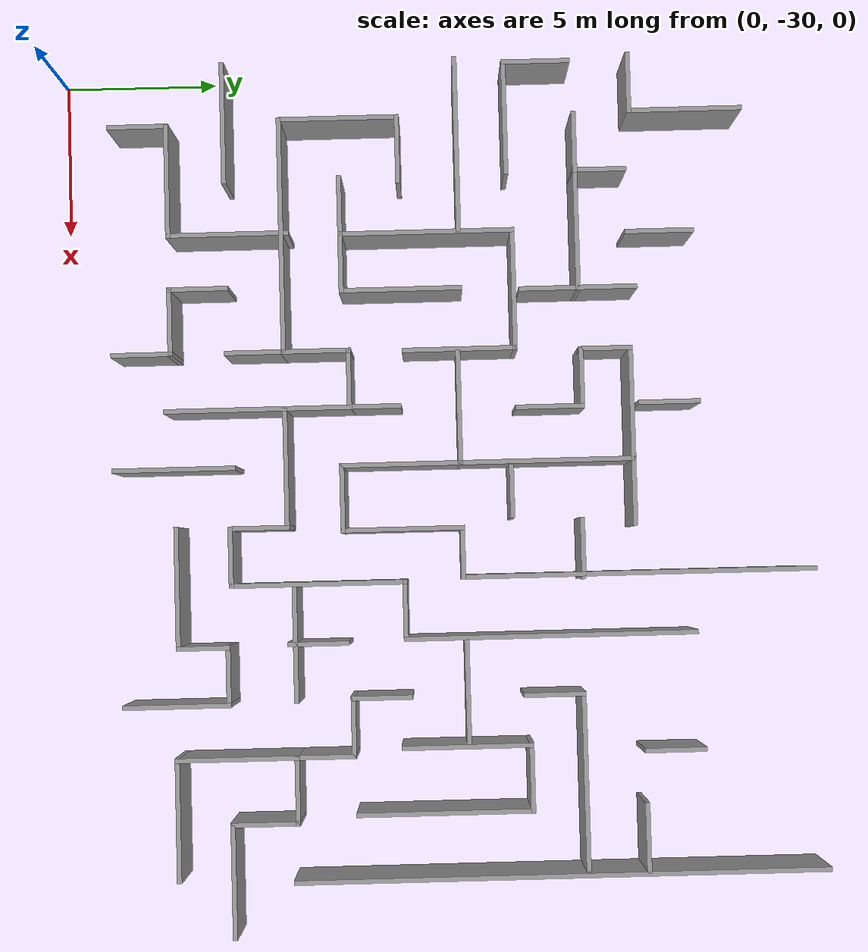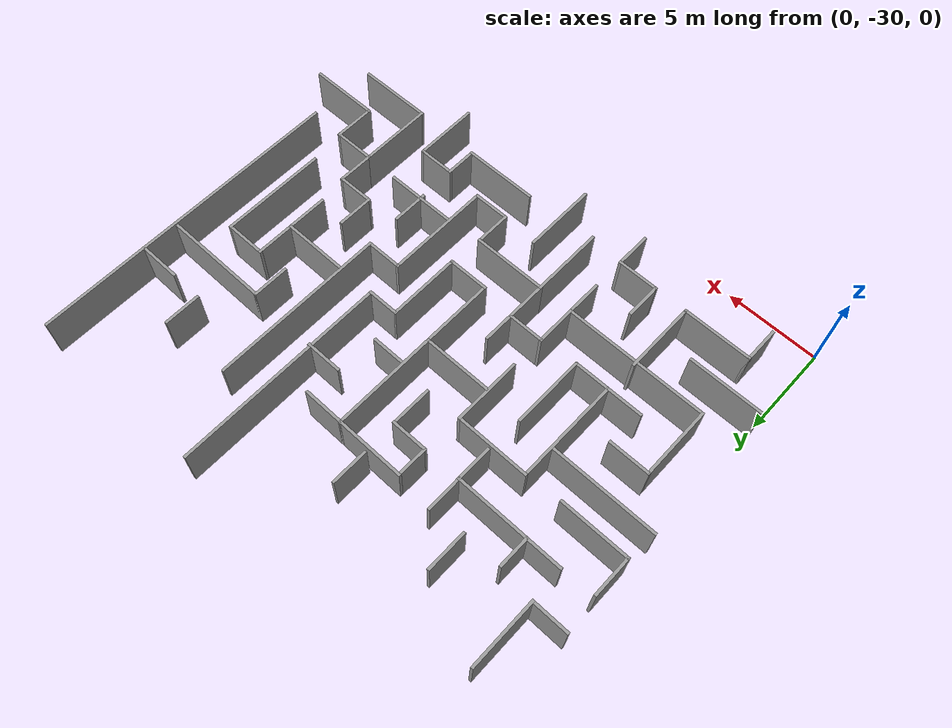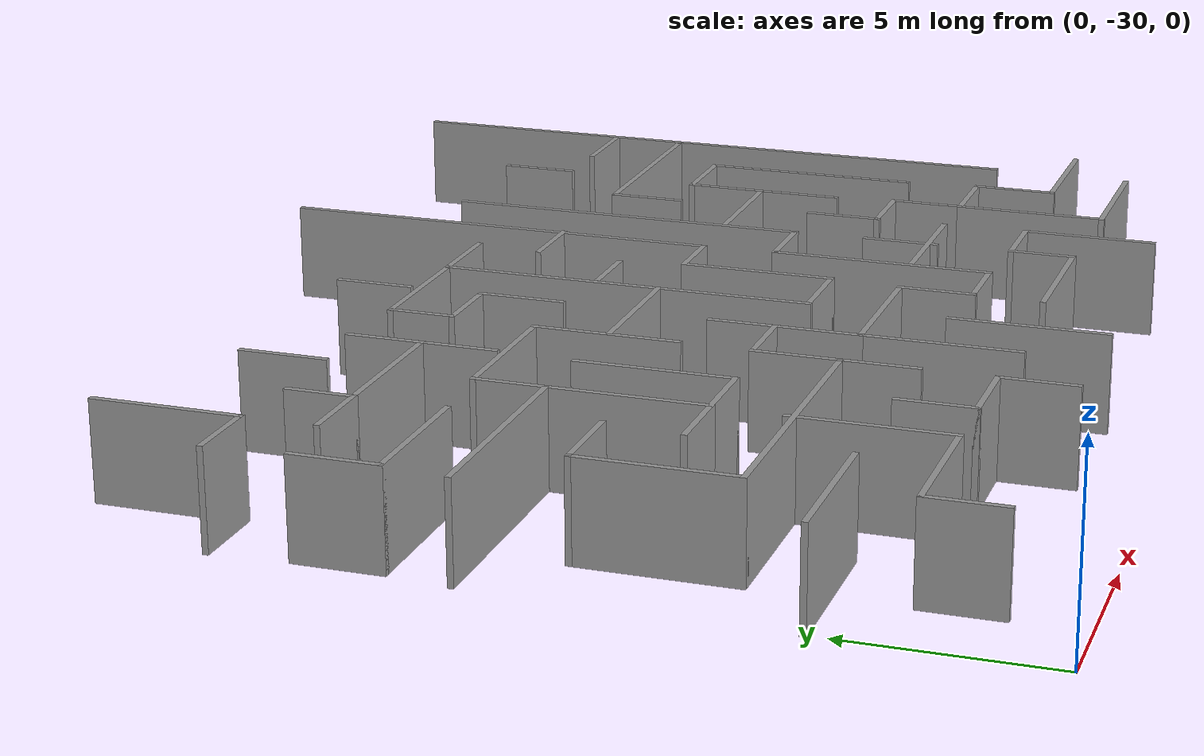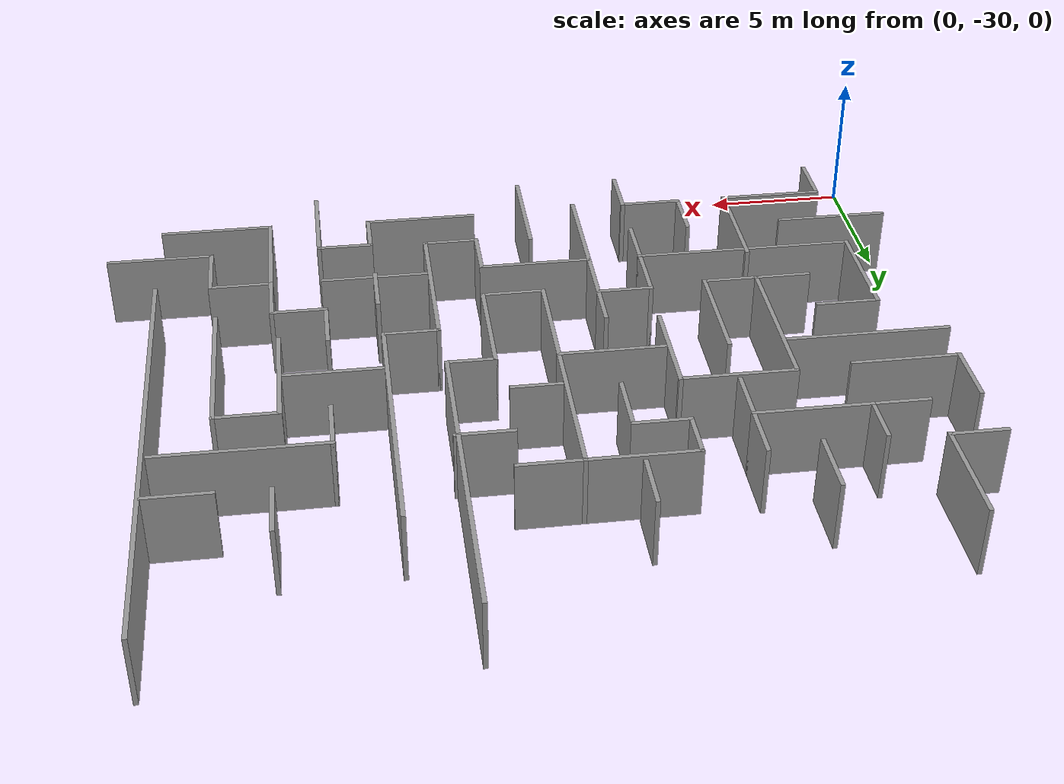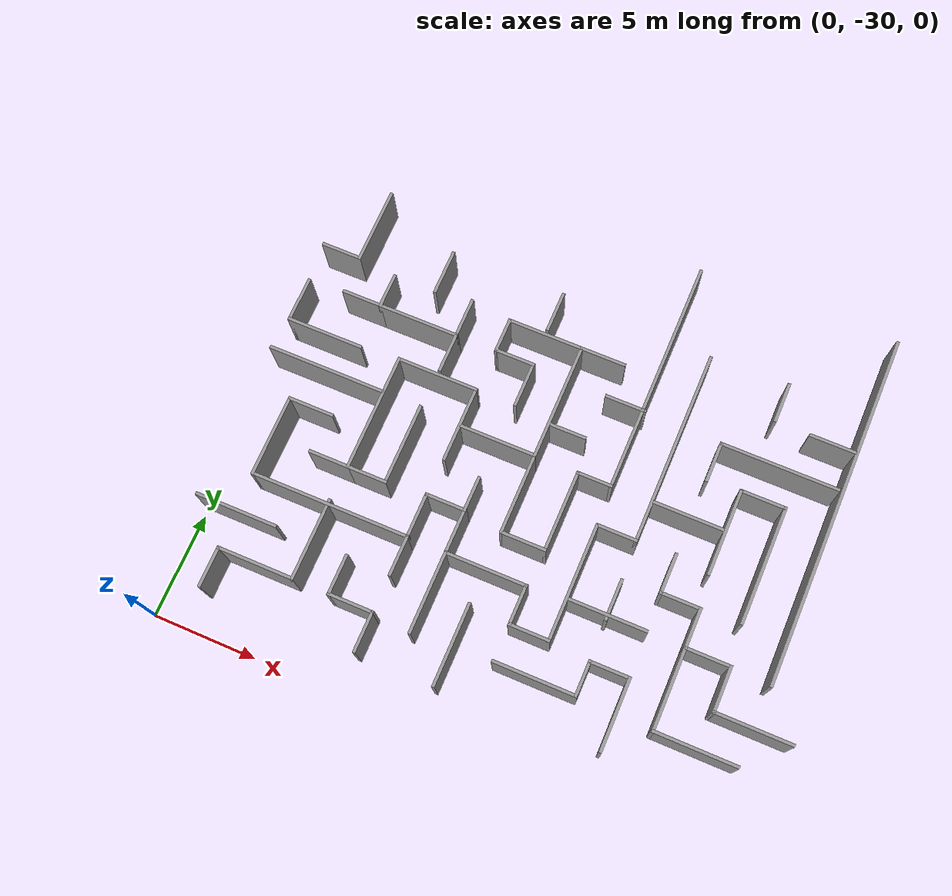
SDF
<sdf version="1.7">
 <model name="maze4">
  <pose>-0.019787 0.082438 0 0 -0 0</pose>
  <link name="Wall_297">
   <collision name="Wall_297_Collision">
    <geometry><box><size>2 0.15 2.5</size></box></geometry>
    <pose>0 0 1.25 0 -0 0</pose>
   </collision>
   <visual name="Wall_297_Visual">
    <pose>0 0 1.25 0 -0 0</pose>
    <geometry><box><size>2 0.15 2.5</size></box></geometry>
    <material>
     <script><uri>file://media/materials/scripts/gazebo.material</uri><name>Gazebo/Grey</name></script>
     <ambient>1 1 1 1</ambient>
    </material>
    <meta><layer>0</layer></meta>
   </visual>
   <pose>0.929166 -11.3295 0 0 -0 0</pose>
  </link>
  <link name="Wall_298">
   <collision name="Wall_298_Collision">
    <geometry><box><size>3.75 0.15 2.5</size></box></geometry>
    <pose>0 0 1.25 0 -0 0</pose>
   </collision>
   <visual name="Wall_298_Visual">
    <pose>0 0 1.25 0 -0 0</pose>
    <geometry><box><size>3.75 0.15 2.5</size></box></geometry>
    <material>
     <script><uri>file://media/materials/scripts/gazebo.material</uri><name>Gazebo/Grey</name></script>
     <ambient>1 1 1 1</ambient>
    </material>
    <meta><layer>0</layer></meta>
   </visual>
   <pose>1.85417 -9.52949 0 0 -0 1.5708</pose>
  </link>
  <link name="Wall_308">
   <collision name="Wall_308_Collision">
    <geometry><box><size>2.25 0.15 2.5</size></box></geometry>
    <pose>0 0 1.25 0 -0 0</pose>
   </collision>
   <visual name="Wall_308_Visual">
    <pose>0 0 1.25 0 -0 0</pose>
    <geometry><box><size>2.25 0.15 2.5</size></box></geometry>
    <material>
     <script><uri>file://media/materials/scripts/gazebo.material</uri><name>Gazebo/Grey</name></script>
     <ambient>1 1 1 1</ambient>
    </material>
    <meta><layer>0</layer></meta>
   </visual>
   <pose>5.82282 -10.4587 0 0 -0 -1.5708</pose>
  </link>
  <link name="Wall_310">
   <collision name="Wall_310_Collision">
    <geometry><box><size>2 0.15 2.5</size></box></geometry>
    <pose>0 0 1.25 0 -0 0</pose>
   </collision>
   <visual name="Wall_310_Visual">
    <pose>0 0 1.25 0 -0 0</pose>
    <geometry><box><size>2 0.15 2.5</size></box></geometry>
    <material>
     <script><uri>file://media/materials/scripts/gazebo.material</uri><name>Gazebo/Grey</name></script>
     <ambient>1 1 1 1</ambient>
    </material>
    <meta><layer>0</layer></meta>
   </visual>
   <pose>2.83555 -13.1485 0 0 -0 0</pose>
  </link>
  <link name="Wall_311">
   <collision name="Wall_311_Collision">
    <geometry><box><size>1.75 0.15 2.5</size></box></geometry>
    <pose>0 0 1.25 0 -0 0</pose>
   </collision>
   <visual name="Wall_311_Visual">
    <pose>0 0 1.25 0 -0 0</pose>
    <geometry><box><size>1.75 0.15 2.5</size></box></geometry>
    <material>
     <script><uri>file://media/materials/scripts/gazebo.material</uri><name>Gazebo/Grey</name></script>
     <ambient>1 1 1 1</ambient>
    </material>
    <meta><layer>0</layer></meta>
   </visual>
   <pose>3.76055 -12.3485 0 0 -0 1.5708</pose>
  </link>
  <link name="Wall_313">
   <collision name="Wall_313_Collision">
    <geometry><box><size>4 0.15 2.5</size></box></geometry>
    <pose>0 0 1.25 0 -0 0</pose>
   </collision>
   <visual name="Wall_313_Visual">
    <pose>0 0 1.25 0 -0 0</pose>
    <geometry><box><size>4 0.15 2.5</size></box></geometry>
    <material>
     <script><uri>file://media/materials/scripts/gazebo.material</uri><name>Gazebo/Grey</name></script>
     <ambient>1 1 1 1</ambient>
    </material>
    <meta><layer>0</layer></meta>
   </visual>
   <pose>5.68555 -13.1485 0 0 -0 0</pose>
  </link>
  <link name="Wall_314">
   <collision name="Wall_314_Collision">
    <geometry><box><size>2 0.15 2.5</size></box></geometry>
    <pose>0 0 1.25 0 -0 0</pose>
   </collision>
   <visual name="Wall_314_Visual">
    <pose>0 0 1.25 0 -0 0</pose>
    <geometry><box><size>2 0.15 2.5</size></box></geometry>
    <material>
     <script><uri>file://media/materials/scripts/gazebo.material</uri><name>Gazebo/Grey</name></script>
     <ambient>1 1 1 1</ambient>
    </material>
    <meta><layer>0</layer></meta>
   </visual>
   <pose>7.61055 -12.2235 0 0 -0 1.5708</pose>
  </link>
  <link name="Wall_316">
   <collision name="Wall_316_Collision">
    <geometry><box><size>3.75 0.15 2.5</size></box></geometry>
    <pose>0 0 1.25 0 -0 0</pose>
   </collision>
   <visual name="Wall_316_Visual">
    <pose>0 0 1.25 0 -0 0</pose>
    <geometry><box><size>3.75 0.15 2.5</size></box></geometry>
    <material>
     <script><uri>file://media/materials/scripts/gazebo.material</uri><name>Gazebo/Grey</name></script>
     <ambient>1 1 1 1</ambient>
    </material>
    <meta><layer>0</layer></meta>
   </visual>
   <pose>9.51693 -17.0445 0 0 -0 1.5708</pose>
  </link>
  <link name="Wall_317">
   <collision name="Wall_317_Collision">
    <geometry><box><size>4 0.15 2.5</size></box></geometry>
    <pose>0 0 1.25 0 -0 0</pose>
   </collision>
   <visual name="Wall_317_Visual">
    <pose>0 0 1.25 0 -0 0</pose>
    <geometry><box><size>4 0.15 2.5</size></box></geometry>
    <material>
     <script><uri>file://media/materials/scripts/gazebo.material</uri><name>Gazebo/Grey</name></script>
     <ambient>1 1 1 1</ambient>
    </material>
    <meta><layer>0</layer></meta>
   </visual>
   <pose>7.59193 -15.2445 0 0 -0 3.14159</pose>
  </link>
  <link name="Wall_318">
   <collision name="Wall_318_Collision">
    <geometry><box><size>5.75 0.15 2.5</size></box></geometry>
    <pose>0 0 1.25 0 -0 0</pose>
   </collision>
   <visual name="Wall_318_Visual">
    <pose>0 0 1.25 0 -0 0</pose>
    <geometry><box><size>5.75 0.15 2.5</size></box></geometry>
    <material>
     <script><uri>file://media/materials/scripts/gazebo.material</uri><name>Gazebo/Grey</name></script>
     <ambient>1 1 1 1</ambient>
    </material>
    <meta><layer>0</layer></meta>
   </visual>
   <pose>5.66693 -18.0445 0 0 -0 -1.5708</pose>
  </link>
  <link name="Wall_319">
   <collision name="Wall_319_Collision">
    <geometry><box><size>2 0.15 2.5</size></box></geometry>
    <pose>0 0 1.25 0 -0 0</pose>
   </collision>
   <visual name="Wall_319_Visual">
    <pose>0 0 1.25 0 -0 0</pose>
    <geometry><box><size>2 0.15 2.5</size></box></geometry>
    <material>
     <script><uri>file://media/materials/scripts/gazebo.material</uri><name>Gazebo/Grey</name></script>
     <ambient>1 1 1 1</ambient>
    </material>
    <meta><layer>0</layer></meta>
   </visual>
   <pose>6.59193 -20.8445 0 0 -0 0</pose>
  </link>
  <link name="Wall_320">
   <collision name="Wall_320_Collision">
    <geometry><box><size>4 0.15 2.5</size></box></geometry>
    <pose>0 0 1.25 0 -0 0</pose>
   </collision>
   <visual name="Wall_320_Visual">
    <pose>0 0 1.25 0 -0 0</pose>
    <geometry><box><size>4 0.15 2.5</size></box></geometry>
    <material>
     <script><uri>file://media/materials/scripts/gazebo.material</uri><name>Gazebo/Grey</name></script>
     <ambient>1 1 1 1</ambient>
    </material>
    <meta><layer>0</layer></meta>
   </visual>
   <pose>7.51693 -18.9195 0 0 -0 1.5708</pose>
  </link>
  <link name="Wall_322">
   <collision name="Wall_322_Collision">
    <geometry><box><size>2 0.15 2.5</size></box></geometry>
    <pose>0 0 1.25 0 -0 0</pose>
   </collision>
   <visual name="Wall_322_Visual">
    <pose>0 0 1.25 0 -0 0</pose>
    <geometry><box><size>2 0.15 2.5</size></box></geometry>
    <material>
     <script><uri>file://media/materials/scripts/gazebo.material</uri><name>Gazebo/Grey</name></script>
     <ambient>1 1 1 1</ambient>
    </material>
    <meta><layer>0</layer></meta>
   </visual>
   <pose>4.74193 -20.8445 0 0 -0 3.14159</pose>
  </link>
  <link name="Wall_324">
   <collision name="Wall_324_Collision">
    <geometry><box><size>2.25 0.15 2.5</size></box></geometry>
    <pose>0 0 1.25 0 -0 0</pose>
   </collision>
   <visual name="Wall_324_Visual">
    <pose>0 0 1.25 0 -0 0</pose>
    <geometry><box><size>2.25 0.15 2.5</size></box></geometry>
    <material>
     <script><uri>file://media/materials/scripts/gazebo.material</uri><name>Gazebo/Grey</name></script>
     <ambient>1 1 1 1</ambient>
    </material>
    <meta><layer>0</layer></meta>
   </visual>
   <pose>2.9125 -18.9152 0 0 -0 3.14159</pose>
  </link>
  <link name="Wall_325">
   <collision name="Wall_325_Collision">
    <geometry><box><size>4 0.15 2.5</size></box></geometry>
    <pose>0 0 1.25 0 -0 0</pose>
   </collision>
   <visual name="Wall_325_Visual">
    <pose>0 0 1.25 0 -0 0</pose>
    <geometry><box><size>4 0.15 2.5</size></box></geometry>
    <material>
     <script><uri>file://media/materials/scripts/gazebo.material</uri><name>Gazebo/Grey</name></script>
     <ambient>1 1 1 1</ambient>
    </material>
    <meta><layer>0</layer></meta>
   </visual>
   <pose>1.8625 -20.8402 0 0 -0 -1.5708</pose>
  </link>
  <link name="Wall_326">
   <collision name="Wall_326_Collision">
    <geometry><box><size>7.75 0.15 2.5</size></box></geometry>
    <pose>0 0 1.25 0 -0 0</pose>
   </collision>
   <visual name="Wall_326_Visual">
    <pose>0 0 1.25 0 -0 0</pose>
    <geometry><box><size>7.75 0.15 2.5</size></box></geometry>
    <material>
     <script><uri>file://media/materials/scripts/gazebo.material</uri><name>Gazebo/Grey</name></script>
     <ambient>1 1 1 1</ambient>
    </material>
    <meta><layer>0</layer></meta>
   </visual>
   <pose>5.6625 -22.7652 0 0 -0 0</pose>
  </link>
  <link name="Wall_327">
   <collision name="Wall_327_Collision">
    <geometry><box><size>2.25 0.15 2.5</size></box></geometry>
    <pose>0 0 1.25 0 -0 0</pose>
   </collision>
   <visual name="Wall_327_Visual">
    <pose>0 0 1.25 0 -0 0</pose>
    <geometry><box><size>2.25 0.15 2.5</size></box></geometry>
    <material>
     <script><uri>file://media/materials/scripts/gazebo.material</uri><name>Gazebo/Grey</name></script>
     <ambient>1 1 1 1</ambient>
    </material>
    <meta><layer>0</layer></meta>
   </visual>
   <pose>9.4625 -21.7152 0 0 -0 1.5708</pose>
  </link>
  <link name="Wall_328">
   <collision name="Wall_328_Collision">
    <geometry><box><size>2 0.15 2.5</size></box></geometry>
    <pose>0 0 1.25 0 -0 0</pose>
   </collision>
   <visual name="Wall_328_Visual">
    <pose>0 0 1.25 0 -0 0</pose>
    <geometry><box><size>2 0.15 2.5</size></box></geometry>
    <material>
     <script><uri>file://media/materials/scripts/gazebo.material</uri><name>Gazebo/Grey</name></script>
     <ambient>1 1 1 1</ambient>
    </material>
    <meta><layer>0</layer></meta>
   </visual>
   <pose>10.3875 -20.6652 0 0 -0 0</pose>
  </link>
  <link name="Wall_329">
   <collision name="Wall_329_Collision">
    <geometry><box><size>2.25 0.15 2.5</size></box></geometry>
    <pose>0 0 1.25 0 -0 0</pose>
   </collision>
   <visual name="Wall_329_Visual">
    <pose>0 0 1.25 0 -0 0</pose>
    <geometry><box><size>2.25 0.15 2.5</size></box></geometry>
    <material>
     <script><uri>file://media/materials/scripts/gazebo.material</uri><name>Gazebo/Grey</name></script>
     <ambient>1 1 1 1</ambient>
    </material>
    <meta><layer>0</layer></meta>
   </visual>
   <pose>11.3125 -21.7152 0 0 -0 -1.5708</pose>
  </link>
  <link name="Wall_330">
   <collision name="Wall_330_Collision">
    <geometry><box><size>4 0.15 2.5</size></box></geometry>
    <pose>0 0 1.25 0 -0 0</pose>
   </collision>
   <visual name="Wall_330_Visual">
    <pose>0 0 1.25 0 -0 0</pose>
    <geometry><box><size>4 0.15 2.5</size></box></geometry>
    <material>
     <script><uri>file://media/materials/scripts/gazebo.material</uri><name>Gazebo/Grey</name></script>
     <ambient>1 1 1 1</ambient>
    </material>
    <meta><layer>0</layer></meta>
   </visual>
   <pose>13.2375 -22.7652 0 0 -0 0</pose>
  </link>
  <link name="Wall_331">
   <collision name="Wall_331_Collision">
    <geometry><box><size>2 0.15 2.5</size></box></geometry>
    <pose>0 0 1.25 0 -0 0</pose>
   </collision>
   <visual name="Wall_331_Visual">
    <pose>0 0 1.25 0 -0 0</pose>
    <geometry><box><size>2 0.15 2.5</size></box></geometry>
    <material>
     <script><uri>file://media/materials/scripts/gazebo.material</uri><name>Gazebo/Grey</name></script>
     <ambient>1 1 1 1</ambient>
    </material>
    <meta><layer>0</layer></meta>
   </visual>
   <pose>15.1625 -23.6902 0 0 -0 -1.5708</pose>
  </link>
  <link name="Wall_332">
   <collision name="Wall_332_Collision">
    <geometry><box><size>2 0.15 2.5</size></box></geometry>
    <pose>0 0 1.25 0 -0 0</pose>
   </collision>
   <visual name="Wall_332_Visual">
    <pose>0 0 1.25 0 -0 0</pose>
    <geometry><box><size>2 0.15 2.5</size></box></geometry>
    <material>
     <script><uri>file://media/materials/scripts/gazebo.material</uri><name>Gazebo/Grey</name></script>
     <ambient>1 1 1 1</ambient>
    </material>
    <meta><layer>0</layer></meta>
   </visual>
   <pose>16.0875 -24.6152 0 0 -0 0</pose>
  </link>
  <link name="Wall_333">
   <collision name="Wall_333_Collision">
    <geometry><box><size>5.75 0.15 2.5</size></box></geometry>
    <pose>0 0 1.25 0 -0 0</pose>
   </collision>
   <visual name="Wall_333_Visual">
    <pose>0 0 1.25 0 -0 0</pose>
    <geometry><box><size>5.75 0.15 2.5</size></box></geometry>
    <material>
     <script><uri>file://media/materials/scripts/gazebo.material</uri><name>Gazebo/Grey</name></script>
     <ambient>1 1 1 1</ambient>
    </material>
    <meta><layer>0</layer></meta>
   </visual>
   <pose>17.0125 -21.8152 0 0 -0 1.5708</pose>
  </link>
  <link name="Wall_334">
   <collision name="Wall_334_Collision">
    <geometry><box><size>2 0.15 2.5</size></box></geometry>
    <pose>0 0 1.25 0 -0 0</pose>
   </collision>
   <visual name="Wall_334_Visual">
    <pose>0 0 1.25 0 -0 0</pose>
    <geometry><box><size>2 0.15 2.5</size></box></geometry>
    <material>
     <script><uri>file://media/materials/scripts/gazebo.material</uri><name>Gazebo/Grey</name></script>
     <ambient>1 1 1 1</ambient>
    </material>
    <meta><layer>0</layer></meta>
   </visual>
   <pose>17.9375 -19.0152 0 0 -0 0</pose>
  </link>
  <link name="Wall_335">
   <collision name="Wall_335_Collision">
    <geometry><box><size>9.5 0.15 2.5</size></box></geometry>
    <pose>0 0 1.25 0 -0 0</pose>
   </collision>
   <visual name="Wall_335_Visual">
    <pose>0 0 1.25 0 -0 0</pose>
    <geometry><box><size>9.5 0.15 2.5</size></box></geometry>
    <material>
     <script><uri>file://media/materials/scripts/gazebo.material</uri><name>Gazebo/Grey</name></script>
     <ambient>1 1 1 1</ambient>
    </material>
    <meta><layer>0</layer></meta>
   </visual>
   <pose>18.8625 -14.3402 0 0 -0 1.5708</pose>
  </link>
  <link name="Wall_337">
   <collision name="Wall_337_Collision">
    <geometry><box><size>3.5 0.15 2.5</size></box></geometry>
    <pose>0 0 1.25 0 -0 0</pose>
   </collision>
   <visual name="Wall_337_Visual">
    <pose>0 0 1.25 0 -0 0</pose>
    <geometry><box><size>3.5 0.15 2.5</size></box></geometry>
    <material>
     <script><uri>file://media/materials/scripts/gazebo.material</uri><name>Gazebo/Grey</name></script>
     <ambient>1 1 1 1</ambient>
    </material>
    <meta><layer>0</layer></meta>
   </visual>
   <pose>20.8381 -26.4387 0 0 -0 1.5708</pose>
  </link>
  <link name="Wall_338">
   <collision name="Wall_338_Collision">
    <geometry><box><size>2 0.15 2.5</size></box></geometry>
    <pose>0 0 1.25 0 -0 0</pose>
   </collision>
   <visual name="Wall_338_Visual">
    <pose>0 0 1.25 0 -0 0</pose>
    <geometry><box><size>2 0.15 2.5</size></box></geometry>
    <material>
     <script><uri>file://media/materials/scripts/gazebo.material</uri><name>Gazebo/Grey</name></script>
     <ambient>1 1 1 1</ambient>
    </material>
    <meta><layer>0</layer></meta>
   </visual>
   <pose>19.9131 -24.7637 0 0 -0 3.14159</pose>
  </link>
  <link name="Wall_339">
   <collision name="Wall_339_Collision">
    <geometry><box><size>1.75 0.15 2.5</size></box></geometry>
    <pose>0 0 1.25 0 -0 0</pose>
   </collision>
   <visual name="Wall_339_Visual">
    <pose>0 0 1.25 0 -0 0</pose>
    <geometry><box><size>1.75 0.15 2.5</size></box></geometry>
    <material>
     <script><uri>file://media/materials/scripts/gazebo.material</uri><name>Gazebo/Grey</name></script>
     <ambient>1 1 1 1</ambient>
    </material>
    <meta><layer>0</layer></meta>
   </visual>
   <pose>18.9881 -25.5637 0 0 -0 -1.5708</pose>
  </link>
  <link name="Wall_340">
   <collision name="Wall_340_Collision">
    <geometry><box><size>4 0.15 2.5</size></box></geometry>
    <pose>0 0 1.25 0 -0 0</pose>
   </collision>
   <visual name="Wall_340_Visual">
    <pose>0 0 1.25 0 -0 0</pose>
    <geometry><box><size>4 0.15 2.5</size></box></geometry>
    <material>
     <script><uri>file://media/materials/scripts/gazebo.material</uri><name>Gazebo/Grey</name></script>
     <ambient>1 1 1 1</ambient>
    </material>
    <meta><layer>0</layer></meta>
   </visual>
   <pose>17.0631 -26.3637 0 0 -0 3.14159</pose>
  </link>
  <link name="Wall_342">
   <collision name="Wall_342_Collision">
    <geometry><box><size>4 0.15 2.5</size></box></geometry>
    <pose>0 0 1.25 0 -0 0</pose>
   </collision>
   <visual name="Wall_342_Visual">
    <pose>0 0 1.25 0 -0 0</pose>
    <geometry><box><size>4 0.15 2.5</size></box></geometry>
    <material>
     <script><uri>file://media/materials/scripts/gazebo.material</uri><name>Gazebo/Grey</name></script>
     <ambient>1 1 1 1</ambient>
    </material>
    <meta><layer>0</layer></meta>
   </visual>
   <pose>13.1963 -26.3947 0 0 -0 -1.5708</pose>
  </link>
  <link name="Wall_344">
   <collision name="Wall_344_Collision">
    <geometry><box><size>2 0.15 2.5</size></box></geometry>
    <pose>0 0 1.25 0 -0 0</pose>
   </collision>
   <visual name="Wall_344_Visual">
    <pose>0 0 1.25 0 -0 0</pose>
    <geometry><box><size>2 0.15 2.5</size></box></geometry>
    <material>
     <script><uri>file://media/materials/scripts/gazebo.material</uri><name>Gazebo/Grey</name></script>
     <ambient>1 1 1 1</ambient>
    </material>
    <meta><layer>0</layer></meta>
   </visual>
   <pose>9.44618 -27.3656 0 0 -0 1.5708</pose>
  </link>
  <link name="Wall_345">
   <collision name="Wall_345_Collision">
    <geometry><box><size>2.25 0.15 2.5</size></box></geometry>
    <pose>0 0 1.25 0 -0 0</pose>
   </collision>
   <visual name="Wall_345_Visual">
    <pose>0 0 1.25 0 -0 0</pose>
    <geometry><box><size>2.25 0.15 2.5</size></box></geometry>
    <material>
     <script><uri>file://media/materials/scripts/gazebo.material</uri><name>Gazebo/Grey</name></script>
     <ambient>1 1 1 1</ambient>
    </material>
    <meta><layer>0</layer></meta>
   </visual>
   <pose>8.39618 -26.4406 0 0 -0 3.14159</pose>
  </link>
  <link name="Wall_346">
   <collision name="Wall_346_Collision">
    <geometry><box><size>2 0.15 2.5</size></box></geometry>
    <pose>0 0 1.25 0 -0 0</pose>
   </collision>
   <visual name="Wall_346_Visual">
    <pose>0 0 1.25 0 -0 0</pose>
    <geometry><box><size>2 0.15 2.5</size></box></geometry>
    <material>
     <script><uri>file://media/materials/scripts/gazebo.material</uri><name>Gazebo/Grey</name></script>
     <ambient>1 1 1 1</ambient>
    </material>
    <meta><layer>0</layer></meta>
   </visual>
   <pose>7.34618 -25.5156 0 0 -0 1.5708</pose>
  </link>
  <link name="Wall_348">
   <collision name="Wall_348_Collision">
    <geometry><box><size>2 0.15 2.5</size></box></geometry>
    <pose>0 0 1.25 0 -0 0</pose>
   </collision>
   <visual name="Wall_348_Visual">
    <pose>0 0 1.25 0 -0 0</pose>
    <geometry><box><size>2 0.15 2.5</size></box></geometry>
    <material>
     <script><uri>file://media/materials/scripts/gazebo.material</uri><name>Gazebo/Grey</name></script>
     <ambient>1 1 1 1</ambient>
    </material>
    <meta><layer>0</layer></meta>
   </visual>
   <pose>1.98131 -27.3656 0 0 -0 1.5708</pose>
  </link>
  <link name="Wall_349">
   <collision name="Wall_349_Collision">
    <geometry><box><size>3.75 0.15 2.5</size></box></geometry>
    <pose>0 0 1.25 0 -0 0</pose>
   </collision>
   <visual name="Wall_349_Visual">
    <pose>0 0 1.25 0 -0 0</pose>
    <geometry><box><size>3.75 0.15 2.5</size></box></geometry>
    <material>
     <script><uri>file://media/materials/scripts/gazebo.material</uri><name>Gazebo/Grey</name></script>
     <ambient>1 1 1 1</ambient>
    </material>
    <meta><layer>0</layer></meta>
   </visual>
   <pose>3.78131 -26.4406 0 0 -0 0</pose>
  </link>
  <link name="Wall_350">
   <collision name="Wall_350_Collision">
    <geometry><box><size>4 0.15 2.5</size></box></geometry>
    <pose>0 0 1.25 0 -0 0</pose>
   </collision>
   <visual name="Wall_350_Visual">
    <pose>0 0 1.25 0 -0 0</pose>
    <geometry><box><size>4 0.15 2.5</size></box></geometry>
    <material>
     <script><uri>file://media/materials/scripts/gazebo.material</uri><name>Gazebo/Grey</name></script>
     <ambient>1 1 1 1</ambient>
    </material>
    <meta><layer>0</layer></meta>
   </visual>
   <pose>5.58131 -24.5156 0 0 -0 1.5708</pose>
  </link>
  <link name="Wall_354">
   <collision name="Wall_354_Collision">
    <geometry><box><size>4 0.15 2.5</size></box></geometry>
    <pose>0 0 1.25 0 -0 0</pose>
   </collision>
   <visual name="Wall_354_Visual">
    <pose>0 0 1.25 0 -0 0</pose>
    <geometry><box><size>4 0.15 2.5</size></box></geometry>
    <material>
     <script><uri>file://media/materials/scripts/gazebo.material</uri><name>Gazebo/Grey</name></script>
     <ambient>1 1 1 1</ambient>
    </material>
    <meta><layer>0</layer></meta>
   </visual>
   <pose>1.92511 -24.5844 0 0 -0 0</pose>
  </link>
  <link name="Wall_370">
   <collision name="Wall_370_Collision">
    <geometry><box><size>2.25 0.15 2.5</size></box></geometry>
    <pose>0 0 1.25 0 -0 0</pose>
   </collision>
   <visual name="Wall_370_Visual">
    <pose>0 0 1.25 0 -0 0</pose>
    <geometry><box><size>2.25 0.15 2.5</size></box></geometry>
    <material>
     <script><uri>file://media/materials/scripts/gazebo.material</uri><name>Gazebo/Grey</name></script>
     <ambient>1 1 1 1</ambient>
    </material>
    <meta><layer>0</layer></meta>
   </visual>
   <pose>0.15429 -14.3401 0 0 -0 -1.5708</pose>
  </link>
  <link name="Wall_371">
   <collision name="Wall_371_Collision">
    <geometry><box><size>3.75 0.15 2.5</size></box></geometry>
    <pose>0 0 1.25 0 -0 0</pose>
   </collision>
   <visual name="Wall_371_Visual">
    <pose>0 0 1.25 0 -0 0</pose>
    <geometry><box><size>3.75 0.15 2.5</size></box></geometry>
    <material>
     <script><uri>file://media/materials/scripts/gazebo.material</uri><name>Gazebo/Grey</name></script>
     <ambient>1 1 1 1</ambient>
    </material>
    <meta><layer>0</layer></meta>
   </visual>
   <pose>1.95429 -15.3901 0 0 -0 0</pose>
  </link>
  <link name="Wall_373">
   <collision name="Wall_373_Collision">
    <geometry><box><size>5.75 0.15 2.5</size></box></geometry>
    <pose>0 0 1.25 0 -0 0</pose>
   </collision>
   <visual name="Wall_373_Visual">
    <pose>0 0 1.25 0 -0 0</pose>
    <geometry><box><size>5.75 0.15 2.5</size></box></geometry>
    <material>
     <script><uri>file://media/materials/scripts/gazebo.material</uri><name>Gazebo/Grey</name></script>
     <ambient>1 1 1 1</ambient>
    </material>
    <meta><layer>0</layer></meta>
   </visual>
   <pose>2.80011 -16.9844 0 0 -0 0</pose>
  </link>
  <link name="Wall_375">
   <collision name="Wall_375_Collision">
    <geometry><box><size>2 0.15 2.5</size></box></geometry>
    <pose>0 0 1.25 0 -0 0</pose>
   </collision>
   <visual name="Wall_375_Visual">
    <pose>0 0 1.25 0 -0 0</pose>
    <geometry><box><size>2 0.15 2.5</size></box></geometry>
    <material>
     <script><uri>file://media/materials/scripts/gazebo.material</uri><name>Gazebo/Grey</name></script>
     <ambient>1 1 1 1</ambient>
    </material>
    <meta><layer>0</layer></meta>
   </visual>
   <pose>9.4625 -23.6902 0 0 -0 -1.5708</pose>
  </link>
  <link name="Wall_377">
   <collision name="Wall_377_Collision">
    <geometry><box><size>4 0.15 2.5</size></box></geometry>
    <pose>0 0 1.25 0 -0 0</pose>
   </collision>
   <visual name="Wall_377_Visual">
    <pose>0 0 1.25 0 -0 0</pose>
    <geometry><box><size>4 0.15 2.5</size></box></geometry>
    <material>
     <script><uri>file://media/materials/scripts/gazebo.material</uri><name>Gazebo/Grey</name></script>
     <ambient>1 1 1 1</ambient>
    </material>
    <meta><layer>0</layer></meta>
   </visual>
   <pose>11.3125 -24.6902 0 0 -0 -1.5708</pose>
  </link>
  <link name="Wall_379">
   <collision name="Wall_379_Collision">
    <geometry><box><size>3.75 0.15 2.5</size></box></geometry>
    <pose>0 0 1.25 0 -0 0</pose>
   </collision>
   <visual name="Wall_379_Visual">
    <pose>0 0 1.25 0 -0 0</pose>
    <geometry><box><size>3.75 0.15 2.5</size></box></geometry>
    <material>
     <script><uri>file://media/materials/scripts/gazebo.material</uri><name>Gazebo/Grey</name></script>
     <ambient>1 1 1 1</ambient>
    </material>
    <meta><layer>0</layer></meta>
   </visual>
   <pose>11.4103 -17.1138 0 0 -0 0</pose>
  </link>
  <link name="Wall_380">
   <collision name="Wall_380_Collision">
    <geometry><box><size>4 0.15 2.5</size></box></geometry>
    <pose>0 0 1.25 0 -0 0</pose>
   </collision>
   <visual name="Wall_380_Visual">
    <pose>0 0 1.25 0 -0 0</pose>
    <geometry><box><size>4 0.15 2.5</size></box></geometry>
    <material>
     <script><uri>file://media/materials/scripts/gazebo.material</uri><name>Gazebo/Grey</name></script>
     <ambient>1 1 1 1</ambient>
    </material>
    <meta><layer>0</layer></meta>
   </visual>
   <pose>13.2103 -19.0388 0 0 -0 -1.5708</pose>
  </link>
  <link name="Wall_381">
   <collision name="Wall_381_Collision">
    <geometry><box><size>2.25 0.15 2.5</size></box></geometry>
    <pose>0 0 1.25 0 -0 0</pose>
   </collision>
   <visual name="Wall_381_Visual">
    <pose>0 0 1.25 0 -0 0</pose>
    <geometry><box><size>2.25 0.15 2.5</size></box></geometry>
    <material>
     <script><uri>file://media/materials/scripts/gazebo.material</uri><name>Gazebo/Grey</name></script>
     <ambient>1 1 1 1</ambient>
    </material>
    <meta><layer>0</layer></meta>
   </visual>
   <pose>14.2603 -20.9638 0 0 -0 0</pose>
  </link>
  <link name="Wall_382">
   <collision name="Wall_382_Collision">
    <geometry><box><size>4 0.15 2.5</size></box></geometry>
    <pose>0 0 1.25 0 -0 0</pose>
   </collision>
   <visual name="Wall_382_Visual">
    <pose>0 0 1.25 0 -0 0</pose>
    <geometry><box><size>4 0.15 2.5</size></box></geometry>
    <material>
     <script><uri>file://media/materials/scripts/gazebo.material</uri><name>Gazebo/Grey</name></script>
     <ambient>1 1 1 1</ambient>
    </material>
    <meta><layer>0</layer></meta>
   </visual>
   <pose>15.3103 -19.0388 0 0 -0 1.5708</pose>
  </link>
  <link name="Wall_383">
   <collision name="Wall_383_Collision">
    <geometry><box><size>1.75 0.15 2.5</size></box></geometry>
    <pose>0 0 1.25 0 -0 0</pose>
   </collision>
   <visual name="Wall_383_Visual">
    <pose>0 0 1.25 0 -0 0</pose>
    <geometry><box><size>1.75 0.15 2.5</size></box></geometry>
    <material>
     <script><uri>file://media/materials/scripts/gazebo.material</uri><name>Gazebo/Grey</name></script>
     <ambient>1 1 1 1</ambient>
    </material>
    <meta><layer>0</layer></meta>
   </visual>
   <pose>16.1103 -17.1138 0 0 -0 0</pose>
  </link>
  <link name="Wall_384">
   <collision name="Wall_384_Collision">
    <geometry><box><size>11.5 0.15 2.5</size></box></geometry>
    <pose>0 0 1.25 0 -0 0</pose>
   </collision>
   <visual name="Wall_384_Visual">
    <pose>0 0 1.25 0 -0 0</pose>
    <geometry><box><size>11.5 0.15 2.5</size></box></geometry>
    <material>
     <script><uri>file://media/materials/scripts/gazebo.material</uri><name>Gazebo/Grey</name></script>
     <ambient>1 1 1 1</ambient>
    </material>
    <meta><layer>0</layer></meta>
   </visual>
   <pose>16.9103 -11.4388 0 0 -0 1.5708</pose>
  </link>
  <link name="Wall_389">
   <collision name="Wall_389_Collision">
    <geometry><box><size>2 0.15 2.5</size></box></geometry>
    <pose>0 0 1.25 0 -0 0</pose>
   </collision>
   <visual name="Wall_389_Visual">
    <pose>0 0 1.25 0 -0 0</pose>
    <geometry><box><size>2 0.15 2.5</size></box></geometry>
    <material>
     <script><uri>file://media/materials/scripts/gazebo.material</uri><name>Gazebo/Grey</name></script>
     <ambient>1 1 1 1</ambient>
    </material>
    <meta><layer>0</layer></meta>
   </visual>
   <pose>16.0724 -13.2304 0 0 -0 0</pose>
  </link>
  <link name="Wall_392">
   <collision name="Wall_392_Collision">
    <geometry><box><size>5.75 0.15 2.5</size></box></geometry>
    <pose>0 0 1.25 0 -0 0</pose>
   </collision>
   <visual name="Wall_392_Visual">
    <pose>0 0 1.25 0 -0 0</pose>
    <geometry><box><size>5.75 0.15 2.5</size></box></geometry>
    <material>
     <script><uri>file://media/materials/scripts/gazebo.material</uri><name>Gazebo/Grey</name></script>
     <ambient>1 1 1 1</ambient>
    </material>
    <meta><layer>0</layer></meta>
   </visual>
   <pose>13.2103 -14.3138 0 0 -0 1.5708</pose>
  </link>
  <link name="Wall_393">
   <collision name="Wall_393_Collision">
    <geometry><box><size>3.75 0.15 2.5</size></box></geometry>
    <pose>0 0 1.25 0 -0 0</pose>
   </collision>
   <visual name="Wall_393_Visual">
    <pose>0 0 1.25 0 -0 0</pose>
    <geometry><box><size>3.75 0.15 2.5</size></box></geometry>
    <material>
     <script><uri>file://media/materials/scripts/gazebo.material</uri><name>Gazebo/Grey</name></script>
     <ambient>1 1 1 1</ambient>
    </material>
    <meta><layer>0</layer></meta>
   </visual>
   <pose>11.4103 -11.5138 0 0 -0 3.14159</pose>
  </link>
  <link name="Wall_394">
   <collision name="Wall_394_Collision">
    <geometry><box><size>1.75 0.15 2.5</size></box></geometry>
    <pose>0 0 1.25 0 -0 0</pose>
   </collision>
   <visual name="Wall_394_Visual">
    <pose>0 0 1.25 0 -0 0</pose>
    <geometry><box><size>1.75 0.15 2.5</size></box></geometry>
    <material>
     <script><uri>file://media/materials/scripts/gazebo.material</uri><name>Gazebo/Grey</name></script>
     <ambient>1 1 1 1</ambient>
    </material>
    <meta><layer>0</layer></meta>
   </visual>
   <pose>9.61032 -12.3138 0 0 -0 -1.5708</pose>
  </link>
  <link name="Wall_395">
   <collision name="Wall_395_Collision">
    <geometry><box><size>2 0.15 2.5</size></box></geometry>
    <pose>0 0 1.25 0 -0 0</pose>
   </collision>
   <visual name="Wall_395_Visual">
    <pose>0 0 1.25 0 -0 0</pose>
    <geometry><box><size>2 0.15 2.5</size></box></geometry>
    <material>
     <script><uri>file://media/materials/scripts/gazebo.material</uri><name>Gazebo/Grey</name></script>
     <ambient>1 1 1 1</ambient>
    </material>
    <meta><layer>0</layer></meta>
   </visual>
   <pose>10.5353 -13.1138 0 0 -0 0</pose>
  </link>
  <link name="Wall_396">
   <collision name="Wall_396_Collision">
    <geometry><box><size>2.25 0.15 2.5</size></box></geometry>
    <pose>0 0 1.25 0 -0 0</pose>
   </collision>
   <visual name="Wall_396_Visual">
    <pose>0 0 1.25 0 -0 0</pose>
    <geometry><box><size>2.25 0.15 2.5</size></box></geometry>
    <material>
     <script><uri>file://media/materials/scripts/gazebo.material</uri><name>Gazebo/Grey</name></script>
     <ambient>1 1 1 1</ambient>
    </material>
    <meta><layer>0</layer></meta>
   </visual>
   <pose>11.4603 -14.1638 0 0 -0 -1.5708</pose>
  </link>
  <link name="Wall_398">
   <collision name="Wall_398_Collision">
    <geometry><box><size>2 0.15 2.5</size></box></geometry>
    <pose>0 0 1.25 0 -0 0</pose>
   </collision>
   <visual name="Wall_398_Visual">
    <pose>0 0 1.25 0 -0 0</pose>
    <geometry><box><size>2 0.15 2.5</size></box></geometry>
    <material>
     <script><uri>file://media/materials/scripts/gazebo.material</uri><name>Gazebo/Grey</name></script>
     <ambient>1 1 1 1</ambient>
    </material>
    <meta><layer>0</layer></meta>
   </visual>
   <pose>11.4043 -10.2935 0 0 -0 1.5708</pose>
  </link>
  <link name="Wall_400">
   <collision name="Wall_400_Collision">
    <geometry><box><size>1.75 0.15 2.5</size></box></geometry>
    <pose>0 0 1.25 0 -0 0</pose>
   </collision>
   <visual name="Wall_400_Visual">
    <pose>0 0 1.25 0 -0 0</pose>
    <geometry><box><size>1.75 0.15 2.5</size></box></geometry>
    <material>
     <script><uri>file://media/materials/scripts/gazebo.material</uri><name>Gazebo/Grey</name></script>
     <ambient>1 1 1 1</ambient>
    </material>
    <meta><layer>0</layer></meta>
   </visual>
   <pose>14.1694 -15.4763 0 0 -0 0</pose>
  </link>
  <link name="Wall_402">
   <collision name="Wall_402_Collision">
    <geometry><box><size>2.25 0.15 2.5</size></box></geometry>
    <pose>0 0 1.25 0 -0 0</pose>
   </collision>
   <visual name="Wall_402_Visual">
    <pose>0 0 1.25 0 -0 0</pose>
    <geometry><box><size>2.25 0.15 2.5</size></box></geometry>
    <material>
     <script><uri>file://media/materials/scripts/gazebo.material</uri><name>Gazebo/Grey</name></script>
     <ambient>1 1 1 1</ambient>
    </material>
    <meta><layer>0</layer></meta>
   </visual>
   <pose>14.2603 -11.5138 0 0 -0 0</pose>
  </link>
  <link name="Wall_404">
   <collision name="Wall_404_Collision">
    <geometry><box><size>4 0.15 2.5</size></box></geometry>
    <pose>0 0 1.25 0 -0 0</pose>
   </collision>
   <visual name="Wall_404_Visual">
    <pose>0 0 1.25 0 -0 0</pose>
    <geometry><box><size>4 0.15 2.5</size></box></geometry>
    <material>
     <script><uri>file://media/materials/scripts/gazebo.material</uri><name>Gazebo/Grey</name></script>
     <ambient>1 1 1 1</ambient>
    </material>
    <meta><layer>0</layer></meta>
   </visual>
   <pose>24.4983 -26.4715 0 0 -0 3.14159</pose>
  </link>
  <link name="Wall_405">
   <collision name="Wall_405_Collision">
    <geometry><box><size>4 0.15 2.5</size></box></geometry>
    <pose>0 0 1.25 0 -0 0</pose>
   </collision>
   <visual name="Wall_405_Visual">
    <pose>0 0 1.25 0 -0 0</pose>
    <geometry><box><size>4 0.15 2.5</size></box></geometry>
    <material>
     <script><uri>file://media/materials/scripts/gazebo.material</uri><name>Gazebo/Grey</name></script>
     <ambient>1 1 1 1</ambient>
    </material>
    <meta><layer>0</layer></meta>
   </visual>
   <pose>22.5733 -24.5465 0 0 -0 1.5708</pose>
  </link>
  <link name="Wall_406">
   <collision name="Wall_406_Collision">
    <geometry><box><size>2.25 0.15 2.5</size></box></geometry>
    <pose>0 0 1.25 0 -0 0</pose>
   </collision>
   <visual name="Wall_406_Visual">
    <pose>0 0 1.25 0 -0 0</pose>
    <geometry><box><size>2.25 0.15 2.5</size></box></geometry>
    <material>
     <script><uri>file://media/materials/scripts/gazebo.material</uri><name>Gazebo/Grey</name></script>
     <ambient>1 1 1 1</ambient>
    </material>
    <meta><layer>0</layer></meta>
   </visual>
   <pose>23.6233 -22.6215 0 0 -0 0</pose>
  </link>
  <link name="Wall_407">
   <collision name="Wall_407_Collision">
    <geometry><box><size>2.25 0.15 2.5</size></box></geometry>
    <pose>0 0 1.25 0 -0 0</pose>
   </collision>
   <visual name="Wall_407_Visual">
    <pose>0 0 1.25 0 -0 0</pose>
    <geometry><box><size>2.25 0.15 2.5</size></box></geometry>
    <material>
     <script><uri>file://media/materials/scripts/gazebo.material</uri><name>Gazebo/Grey</name></script>
     <ambient>1 1 1 1</ambient>
    </material>
    <meta><layer>0</layer></meta>
   </visual>
   <pose>24.6733 -23.6715 0 0 -0 -1.5708</pose>
  </link>
  <link name="Wall_408">
   <collision name="Wall_408_Collision">
    <geometry><box><size>3.75 0.15 2.5</size></box></geometry>
    <pose>0 0 1.25 0 -0 0</pose>
   </collision>
   <visual name="Wall_408_Visual">
    <pose>0 0 1.25 0 -0 0</pose>
    <geometry><box><size>3.75 0.15 2.5</size></box></geometry>
    <material>
     <script><uri>file://media/materials/scripts/gazebo.material</uri><name>Gazebo/Grey</name></script>
     <ambient>1 1 1 1</ambient>
    </material>
    <meta><layer>0</layer></meta>
   </visual>
   <pose>26.4733 -24.7215 0 0 -0 0</pose>
  </link>
  <link name="Wall_410">
   <collision name="Wall_410_Collision">
    <geometry><box><size>2 0.15 2.5</size></box></geometry>
    <pose>0 0 1.25 0 -0 0</pose>
   </collision>
   <visual name="Wall_410_Visual">
    <pose>0 0 1.25 0 -0 0</pose>
    <geometry><box><size>2 0.15 2.5</size></box></geometry>
    <material>
     <script><uri>file://media/materials/scripts/gazebo.material</uri><name>Gazebo/Grey</name></script>
     <ambient>1 1 1 1</ambient>
    </material>
    <meta><layer>0</layer></meta>
   </visual>
   <pose>22.5733 -21.6965 0 0 -0 1.5708</pose>
  </link>
  <link name="Wall_411">
   <collision name="Wall_411_Collision">
    <geometry><box><size>2 0.15 2.5</size></box></geometry>
    <pose>0 0 1.25 0 -0 0</pose>
   </collision>
   <visual name="Wall_411_Visual">
    <pose>0 0 1.25 0 -0 0</pose>
    <geometry><box><size>2 0.15 2.5</size></box></geometry>
    <material>
     <script><uri>file://media/materials/scripts/gazebo.material</uri><name>Gazebo/Grey</name></script>
     <ambient>1 1 1 1</ambient>
    </material>
    <meta><layer>0</layer></meta>
   </visual>
   <pose>21.6483 -20.7715 0 0 -0 3.14159</pose>
  </link>
  <link name="Wall_412">
   <collision name="Wall_412_Collision">
    <geometry><box><size>2 0.15 2.5</size></box></geometry>
    <pose>0 0 1.25 0 -0 0</pose>
   </collision>
   <visual name="Wall_412_Visual">
    <pose>0 0 1.25 0 -0 0</pose>
    <geometry><box><size>2 0.15 2.5</size></box></geometry>
    <material>
     <script><uri>file://media/materials/scripts/gazebo.material</uri><name>Gazebo/Grey</name></script>
     <ambient>1 1 1 1</ambient>
    </material>
    <meta><layer>0</layer></meta>
   </visual>
   <pose>20.7233 -19.8465 0 0 -0 1.5708</pose>
  </link>
  <link name="Wall_414">
   <collision name="Wall_414_Collision">
    <geometry><box><size>3.75 0.15 2.5</size></box></geometry>
    <pose>0 0 1.25 0 -0 0</pose>
   </collision>
   <visual name="Wall_414_Visual">
    <pose>0 0 1.25 0 -0 0</pose>
    <geometry><box><size>3.75 0.15 2.5</size></box></geometry>
    <material>
     <script><uri>file://media/materials/scripts/gazebo.material</uri><name>Gazebo/Grey</name></script>
     <ambient>1 1 1 1</ambient>
    </material>
    <meta><layer>0</layer></meta>
   </visual>
   <pose>18.9619 -22.588 0 0 -0 3.14159</pose>
  </link>
  <link name="Wall_416">
   <collision name="Wall_416_Collision">
    <geometry><box><size>2 0.15 2.5</size></box></geometry>
    <pose>0 0 1.25 0 -0 0</pose>
   </collision>
   <visual name="Wall_416_Visual">
    <pose>0 0 1.25 0 -0 0</pose>
    <geometry><box><size>2 0.15 2.5</size></box></geometry>
    <material>
     <script><uri>file://media/materials/scripts/gazebo.material</uri><name>Gazebo/Grey</name></script>
     <ambient>1 1 1 1</ambient>
    </material>
    <meta><layer>0</layer></meta>
   </visual>
   <pose>18.9372 -21.8502 0 0 -0 1.5708</pose>
  </link>
  <link name="Wall_418">
   <collision name="Wall_418_Collision">
    <geometry><box><size>17.25 0.15 2.5</size></box></geometry>
    <pose>0 0 1.25 0 -0 0</pose>
   </collision>
   <visual name="Wall_418_Visual">
    <pose>0 0 1.25 0 -0 0</pose>
    <geometry><box><size>17.25 0.15 2.5</size></box></geometry>
    <material>
     <script><uri>file://media/materials/scripts/gazebo.material</uri><name>Gazebo/Grey</name></script>
     <ambient>1 1 1 1</ambient>
    </material>
    <meta><layer>0</layer></meta>
   </visual>
   <pose>26.5637 -14.1784 0 0 -0 1.5708</pose>
  </link>
  <link name="Wall_420">
   <collision name="Wall_420_Collision">
    <geometry><box><size>2.25 0.15 2.5</size></box></geometry>
    <pose>0 0 1.25 0 -0 0</pose>
   </collision>
   <visual name="Wall_420_Visual">
    <pose>0 0 1.25 0 -0 0</pose>
    <geometry><box><size>2.25 0.15 2.5</size></box></geometry>
    <material>
     <script><uri>file://media/materials/scripts/gazebo.material</uri><name>Gazebo/Grey</name></script>
     <ambient>1 1 1 1</ambient>
    </material>
    <meta><layer>0</layer></meta>
   </visual>
   <pose>25.4146 -11.4057 0 0 -0 0</pose>
  </link>
  <link name="Wall_422">
   <collision name="Wall_422_Collision">
    <geometry><box><size>5.75 0.15 2.5</size></box></geometry>
    <pose>0 0 1.25 0 -0 0</pose>
   </collision>
   <visual name="Wall_422_Visual">
    <pose>0 0 1.25 0 -0 0</pose>
    <geometry><box><size>5.75 0.15 2.5</size></box></geometry>
    <material>
     <script><uri>file://media/materials/scripts/gazebo.material</uri><name>Gazebo/Grey</name></script>
     <ambient>1 1 1 1</ambient>
    </material>
    <meta><layer>0</layer></meta>
   </visual>
   <pose>24.4582 -17.8697 0 0 -0 1.5708</pose>
  </link>
  <link name="Wall_423">
   <collision name="Wall_423_Collision">
    <geometry><box><size>2.25 0.15 2.5</size></box></geometry>
    <pose>0 0 1.25 0 -0 0</pose>
   </collision>
   <visual name="Wall_423_Visual">
    <pose>0 0 1.25 0 -0 0</pose>
    <geometry><box><size>2.25 0.15 2.5</size></box></geometry>
    <material>
     <script><uri>file://media/materials/scripts/gazebo.material</uri><name>Gazebo/Grey</name></script>
     <ambient>1 1 1 1</ambient>
    </material>
    <meta><layer>0</layer></meta>
   </visual>
   <pose>23.4082 -15.0697 0 0 -0 3.14159</pose>
  </link>
  <link name="Wall_424">
   <collision name="Wall_424_Collision">
    <geometry><box><size>4.25 0.15 2.5</size></box></geometry>
    <pose>0 0 1.25 0 -0 0</pose>
   </collision>
   <visual name="Wall_424_Visual">
    <pose>0 0 1.25 0 -0 0</pose>
    <geometry><box><size>4.25 0.15 2.5</size></box></geometry>
    <material>
     <script><uri>file://media/materials/scripts/gazebo.material</uri><name>Gazebo/Grey</name></script>
     <ambient>1 1 1 1</ambient>
    </material>
    <meta><layer>0</layer></meta>
   </visual>
   <pose>22.3582 -17.1197 0 0 -0 -1.5708</pose>
  </link>
  <link name="Wall_427">
   <collision name="Wall_427_Collision">
    <geometry><box><size>3.5 0.15 2.5</size></box></geometry>
    <pose>0 0 1.25 0 -0 0</pose>
   </collision>
   <visual name="Wall_427_Visual">
    <pose>0 0 1.25 0 -0 0</pose>
    <geometry><box><size>3.5 0.15 2.5</size></box></geometry>
    <material>
     <script><uri>file://media/materials/scripts/gazebo.material</uri><name>Gazebo/Grey</name></script>
     <ambient>1 1 1 1</ambient>
    </material>
    <meta><layer>0</layer></meta>
   </visual>
   <pose>20.659 -17.067 0 0 -0 0</pose>
  </link>
  <link name="Wall_429">
   <collision name="Wall_429_Collision">
    <geometry><box><size>2 0.15 2.5</size></box></geometry>
    <pose>0 0 1.25 0 -0 0</pose>
   </collision>
   <visual name="Wall_429_Visual">
    <pose>0 0 1.25 0 -0 0</pose>
    <geometry><box><size>2 0.15 2.5</size></box></geometry>
    <material>
     <script><uri>file://media/materials/scripts/gazebo.material</uri><name>Gazebo/Grey</name></script>
     <ambient>1 1 1 1</ambient>
    </material>
    <meta><layer>0</layer></meta>
   </visual>
   <pose>20.7619 -14.2705 0 0 -0 1.5708</pose>
  </link>
  <link name="Wall_430">
   <collision name="Wall_430_Collision">
    <geometry><box><size>5.75 0.15 2.5</size></box></geometry>
    <pose>0 0 1.25 0 -0 0</pose>
   </collision>
   <visual name="Wall_430_Visual">
    <pose>0 0 1.25 0 -0 0</pose>
    <geometry><box><size>5.75 0.15 2.5</size></box></geometry>
    <material>
     <script><uri>file://media/materials/scripts/gazebo.material</uri><name>Gazebo/Grey</name></script>
     <ambient>1 1 1 1</ambient>
    </material>
    <meta><layer>0</layer></meta>
   </visual>
   <pose>23.5619 -13.3455 0 0 -0 0</pose>
  </link>
  <link name="Wall_432">
   <collision name="Wall_432_Collision">
    <geometry><box><size>2 0.15 2.5</size></box></geometry>
    <pose>0 0 1.25 0 -0 0</pose>
   </collision>
   <visual name="Wall_432_Visual">
    <pose>0 0 1.25 0 -0 0</pose>
    <geometry><box><size>2 0.15 2.5</size></box></geometry>
    <material>
     <script><uri>file://media/materials/scripts/gazebo.material</uri><name>Gazebo/Grey</name></script>
     <ambient>1 1 1 1</ambient>
    </material>
    <meta><layer>0</layer></meta>
   </visual>
   <pose>22.6335 -10.4339 0 0 -0 1.5708</pose>
  </link>
  <link name="Wall_475">
   <collision name="Wall_475_Collision">
    <geometry><box><size>2 0.15 2.5</size></box></geometry>
    <pose>0 0 1.25 0 -0 0</pose>
   </collision>
   <visual name="Wall_475_Visual">
    <pose>0 0 1.25 0 -0 0</pose>
    <geometry><box><size>2 0.15 2.5</size></box></geometry>
    <material>
     <script><uri>file://media/materials/scripts/gazebo.material</uri><name>Gazebo/Grey</name></script>
     <ambient>1 1 1 1</ambient>
    </material>
    <meta><layer>0</layer></meta>
   </visual>
   <pose>7.61055 -14.0735 0 0 -0 -1.5708</pose>
  </link>
  <link name="Wall_477">
   <collision name="Wall_477_Collision">
    <geometry><box><size>1.75 0.15 2.5</size></box></geometry>
    <pose>0 0 1.25 0 -0 0</pose>
   </collision>
   <visual name="Wall_477_Visual">
    <pose>0 0 1.25 0 -0 0</pose>
    <geometry><box><size>1.75 0.15 2.5</size></box></geometry>
    <material>
     <script><uri>file://media/materials/scripts/gazebo.material</uri><name>Gazebo/Grey</name></script>
     <ambient>1 1 1 1</ambient>
    </material>
    <meta><layer>0</layer></meta>
   </visual>
   <pose>11.3125 -19.8652 0 0 -0 -1.5708</pose>
  </link>
  <static>1</static>
 </model>
</sdf>
